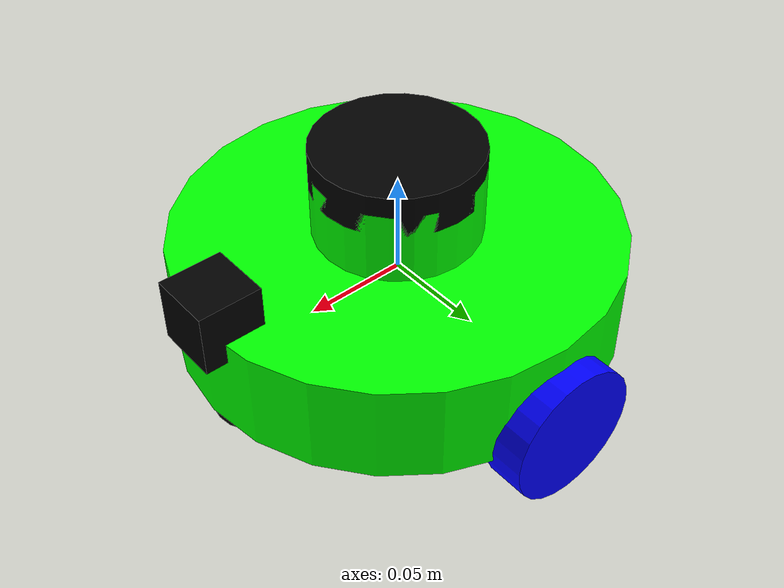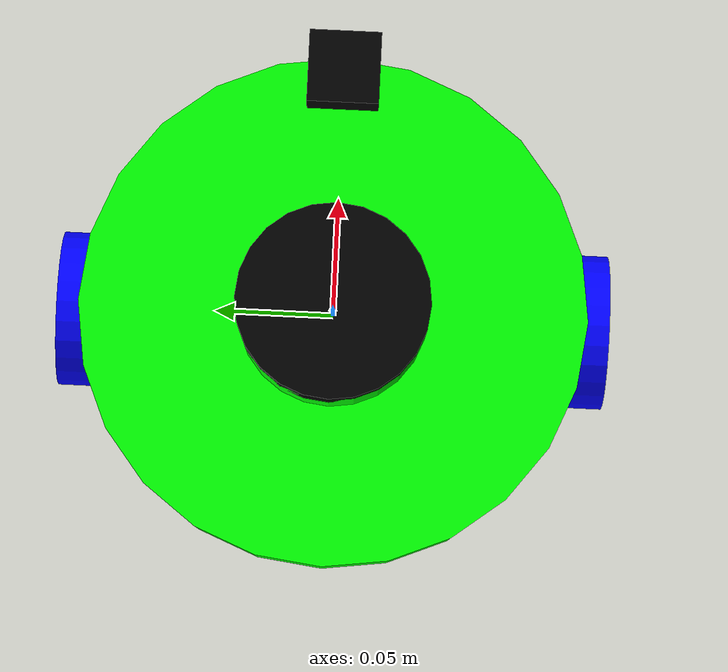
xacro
<?xml version="1.0"?>
<robot xmlns:xacro="http://www.ros.org/wiki/xacro" name="jetbot">

  <!-- Premenné -->
  <xacro:property name="wheel_radius" value="0.033"/>
  <xacro:property name="wheel_length" value="0.02"/>
  <xacro:property name="body_radius" value="0.1066"/>
  <xacro:property name="body_length" value="0.05"/>
  <xacro:property name="caster_radius" value="0.015"/>
  <xacro:property name="camera_size" value="0.03"/>
  <xacro:property name="lidar_radius" value="0.04"/>
  <xacro:property name="lidar_length" value="0.02"/>
  <xacro:property name="lidar_base_radius" value="0.04"/>
  <xacro:property name="lidar_base_length" value="0.035"/>

  <!-- Materiály -->
  <material name="green"><color rgba="0 1 0 1"/></material>
  <material name="blue"><color rgba="0 0 1 1"/></material>
  <material name="black"><color rgba="0 0 0 1"/></material>

  <!-- Telo robota -->
  <link name="base_link">
    <visual>
      <geometry>
        <cylinder radius="${body_radius}" length="${body_length}"/>
      </geometry>
      <material name="green"/>
    </visual>
    <collision>
      <geometry>
        <cylinder radius="${body_radius}" length="${body_length}"/>
      </geometry>
    </collision>
    <inertial>
      <mass value="1.5"/>
      <inertia ixx="0.02" ixy="0" ixz="0" iyy="0.02" iyz="0" izz="0.04"/>
    </inertial>
    <!-- Sensor pre IMU -->
    <sensor type="imu" name="imu_sensor">
      <update_rate>100</update_rate>
      <always_on>1</always_on>
      <visualize>true</visualize>
      <topic>/imu</topic>
    </sensor>
    <!-- Sensor pre kontaktný senzor -->
    <sensor type="contact" name="contact_sensor">
      <update_rate>100</update_rate>
      <contact>
        <collision>base_link_collision</collision>
        <collision>left_wheel_collision</collision>
        <collision>right_wheel_collision</collision>
      </contact>
    </sensor>
  </link>

  <gazebo reference="base_link">
    <material>Gazebo/Green</material>
    <mu1>0.5</mu1>
    <mu2>0.5</mu2>
  </gazebo>

  <!-- Makro pre koleso -->
  <xacro:macro name="wheel" params="name x y z">
    <link name="${name}">
      <visual>
        <geometry>
          <cylinder radius="${wheel_radius}" length="${wheel_length}"/>
        </geometry>
        <origin xyz="0 0 0" rpy="1.5707 0 0"/>
        <material name="blue"/>
      </visual>
      <collision name="${name}_collision">
        <geometry>
          <cylinder radius="${wheel_radius}" length="${wheel_length}"/>
        </geometry>
        <origin xyz="0 0 0" rpy="1.5707 0 0"/>
      </collision>
      <inertial>
        <mass value="0.1"/>
        <inertia ixx="0.001" ixy="0" ixz="0" iyy="0.001" iyz="0" izz="0.002"/>
      </inertial>
    </link>
    <gazebo reference="${name}">
      <material>Gazebo/Blue</material>
      <mu1>1.0</mu1>
      <mu2>1.0</mu2>
      <kp>1000000.0</kp>
      <kd>100.0</kd>
    </gazebo>
    <joint name="${name}_joint" type="continuous">
      <parent link="base_link"/>
      <child link="${name}"/>
      <origin xyz="${x} ${y} ${z}" rpy="0 0 0"/>
      <axis xyz="0 1 0"/>
    </joint>
  </xacro:macro>

  <!-- Vytvorenie hlavných kolies -->
  <xacro:wheel name="left_wheel" x="0" y="0.1066" z="-0.02"/>
  <xacro:wheel name="right_wheel" x="0" y="-0.1066" z="-0.02"/>

  <!-- Makro pre pomocné koleso -->
  <xacro:macro name="caster_wheel" params="name x">
    <link name="${name}">
      <visual>
        <geometry>
          <sphere radius="${caster_radius}"/>
        </geometry>
        <material name="black"/>
      </visual>
      <collision>
        <geometry>
          <sphere radius="${caster_radius}"/>
        </geometry>
      </collision>
      <inertial>
        <mass value="0.05"/>
        <inertia ixx="0.0005" ixy="0" ixz="0" iyy="0.0005" iyz="0" izz="0.0005"/>
      </inertial>
    </link>
    <gazebo reference="${name}">
      <material>Gazebo/Black</material>
      <mu1>1.0</mu1>
      <mu2>1.0</mu2>
    </gazebo>
    <joint name="${name}_joint" type="continuous">
      <parent link="base_link"/>
      <child link="${name}"/>
      <origin xyz="${x} 0 -0.027" rpy="0 0 0"/>
      <axis xyz="0 1 0"/>
      <limit lower="-0.1" upper="0.1" effort="0.1" velocity="1.0"/>
      <dynamics damping="0.1" friction="0.05"/>
    </joint>
  </xacro:macro>

  <!-- Vytvorenie pomocných kolies -->
  <xacro:caster_wheel name="balance_wheel" x="0.09"/>
  <xacro:caster_wheel name="balance_wheel_2" x="-0.09"/>

  <!-- Kamera -->
  <link name="camera">
    <visual>
      <geometry>
        <box size="${camera_size} ${camera_size} ${camera_size}"/>
      </geometry>
      <material name="black"/>
    </visual>
  </link>
  <gazebo reference="camera">
    <material>Gazebo/Black</material>
    <sensor type="camera" name="sim_camera">
      <update_rate>30</update_rate>
      <camera>
        <horizontal_fov>1.39626</horizontal_fov>
        <image>
          <width>640</width>
          <height>480</height>
          <format>R8G8B8</format>
        </image>
        <clip>
          <near>0.1</near>
          <far>100</far>
        </clip>
      </camera>
      <plugin name="gz::sim::systems::Camera" filename="gz-sim-camera-system">
        <topic>/image_raw</topic>
        <frame_id>camera</frame_id>
      </plugin>
    </sensor>
  </gazebo>
  <joint name="camera_joint" type="fixed">
    <parent link="base_link"/>
    <child link="camera"/>
    <origin xyz="0.1 0 0.03" rpy="0 0 0"/>
  </joint>

  <!-- Podstavec pre LIDAR -->
  <link name="lidar_base">
    <visual>
      <geometry>
        <cylinder radius="${lidar_base_radius}" length="${lidar_base_length}"/>
      </geometry>
      <origin xyz="0 0 ${lidar_base_length / 2}" rpy="0 0 0"/>
      <material name="green"/>
    </visual>
    <collision>
      <geometry>
        <cylinder radius="${lidar_base_radius}" length="${lidar_base_length}"/>
      </geometry>
      <origin xyz="0 0 ${lidar_base_length / 2}" rpy="0 0 0"/>
    </collision>
    <inertial>
      <mass value="0.1"/>
      <origin xyz="0 0 ${lidar_base_length / 2}"/>
      <inertia ixx="0.001" ixy="0" ixz="0" iyy="0.001" iyz="0" izz="0.002"/>
    </inertial>
  </link>
  <gazebo reference="lidar_base">
    <material>Gazebo/Green</material>
  </gazebo>
  <joint name="lidar_base_joint" type="fixed">
    <parent link="base_link"/>
    <child link="lidar_base"/>
    <origin xyz="0 0 0.025" rpy="0 0 0"/>
  </joint>

  <!-- LIDAR -->
  <link name="lidar">
    <visual>
      <geometry>
        <cylinder radius="${lidar_radius}" length="${lidar_length}"/>
      </geometry>
      <material name="black"/>
    </visual>
  </link>
  <gazebo reference="lidar">
    <material>Gazebo/Black</material>
    <sensor type="gpu_lidar" name="lidar_sensor">
      <update_rate>20</update_rate>
      <ray>
        <scan>
          <horizontal>
            <samples>720</samples>
            <resolution>1</resolution>
            <min_angle>-1.57</min_angle>
            <max_angle>1.57</max_angle>
          </horizontal>
        </scan>
        <range>
          <min>0.12</min>
          <max>10.0</max>
        </range>
      </ray>
      <plugin name="gz::sim::systems::GpuLidar" filename="gz-sim-gpu-lidar-system">
        <topic>/scan</topic>
        <frame_id>lidar</frame_id>
      </plugin>
    </sensor>
  </gazebo>
  <joint name="lidar_joint" type="fixed">
    <parent link="lidar_base"/>
    <child link="lidar"/>
    <origin xyz="0 0 0.035" rpy="0 0 0"/>
  </joint>

  <!-- Diferenciálny pohon -->
  <gazebo>
    <plugin name="gz::sim::systems::DiffDrive" filename="gz-sim-diff-drive-system">
      <left_joint>left_wheel_joint</left_joint>
      <right_joint>right_wheel_joint</right_joint>
      <wheel_separation>0.21325</wheel_separation>
      <wheel_radius>${wheel_radius}</wheel_radius>
      <odom_topic>odom</odom_topic>
      <odom_publish_frequency>10</odom_publish_frequency>
      <topic>cmd_vel</topic>
      <cmd_timeout>0.5</cmd_timeout>
      <tf_topic>tf</tf_topic>
      <frame_id>odom</frame_id>
      <child_frame_id>base_link</child_frame_id>
      <publish_tf>true</publish_tf>
    </plugin>
  </gazebo>

  <!-- JointStatePublisher plugin -->
  <gazebo>
    <plugin name="gz::sim::systems::JointStatePublisher" filename="gz-sim-joint-state-publisher-system">
      <topic>joint_states</topic>
    </plugin>
  </gazebo>

</robot>
